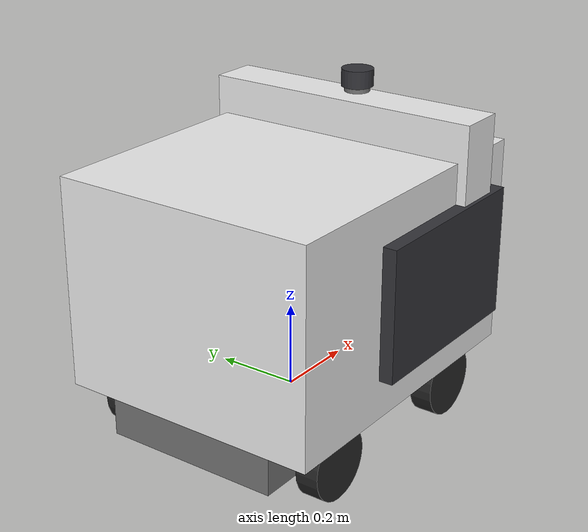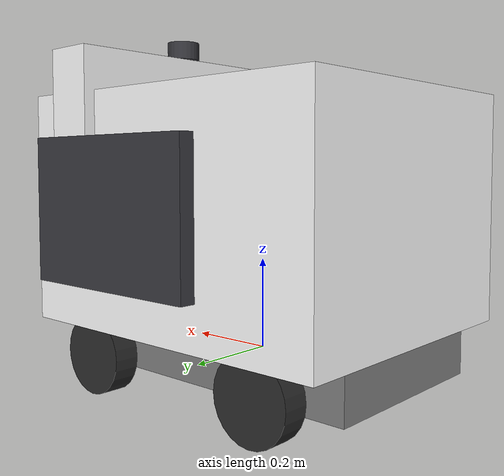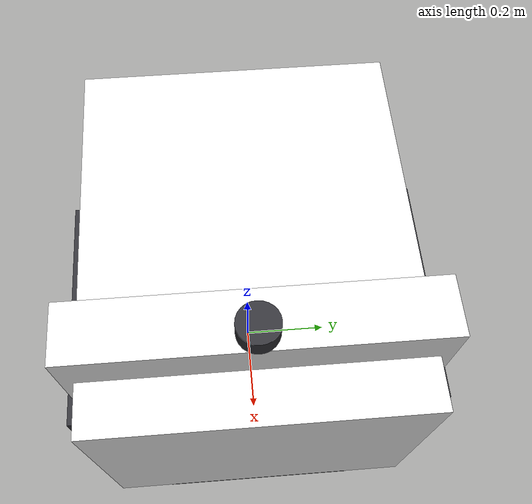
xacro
<?xml version="1.0"?>
<robot name="delivery_robot"
       xmlns:xacro="http://www.ros.org/wiki/xacro">

  <xacro:arg name="sim" default="false"/>

  <xacro:include
    filename="$(find robot_description)/urdf/robot_params.xacro"/>

  <xacro:include
    filename="$(find robot_description)/urdf/macros.xacro"/>

  <!-- 바닥 기준 높이를 base_link 기준 상대 높이로 변환 -->
  <xacro:property name="base_z" value="${wheel_radius}"/>

  <material name="body_white">
    <color rgba="0.92 0.92 0.92 1.0"/>
  </material>

  <material name="frame_grey">
    <color rgba="0.45 0.45 0.45 1.0"/>
  </material>

  <material name="sensor_dark">
    <color rgba="0.20 0.20 0.22 1.0"/>
  </material>

  <!-- ====================================================
       base_link: 바퀴 축 높이의 기준 프레임, 모델의 루트
       ==================================================== -->
  <link name="${base_frame}"/>

  <!-- ====================================================
       base_footprint: 바닥 높이의 고정 프레임
       평면 주행을 가정한다.
       ==================================================== -->
  <link name="base_footprint"/>

  <joint name="base_footprint_joint" type="fixed">
    <parent link="${base_frame}"/>
    <child link="base_footprint"/>
    <origin xyz="0 0 ${-base_z}" rpy="0 0 0"/>
  </joint>

  <!-- ====================================================
       body_link: 차체 형상, 충돌 형상, 차체 관성
       base_link와 같은 원점/방향에 고정한다.
       ==================================================== -->
  <link name="body_link">

    <!-- 하부 차체 -->
    <visual>
      <origin
        xyz="0 0 ${chassis_bottom_z + chassis_height/2 - base_z}"
        rpy="0 0 0"/>
      <geometry>
        <box
          size="${chassis_length} ${chassis_width} ${chassis_height}"/>
      </geometry>
      <material name="frame_grey"/>
    </visual>

    <collision>
      <origin
        xyz="0 0 ${chassis_bottom_z + chassis_height/2 - base_z}"
        rpy="0 0 0"/>
      <geometry>
        <box
          size="${chassis_length} ${chassis_width} ${chassis_height}"/>
      </geometry>
    </collision>

    <!-- 적재함 -->
    <visual>
      <origin
        xyz="${cargo_x_offset} 0 ${cargo_bottom_z + cargo_height/2 - base_z}"
        rpy="0 0 0"/>
      <geometry>
        <box size="${cargo_length} ${cargo_width} ${cargo_height}"/>
      </geometry>
      <material name="body_white"/>
    </visual>

    <!-- 충돌 형상은 측면 디스플레이까지 포함한 전체 폭(body_envelope_width)으로 둔다 -->
    <collision>
      <origin
        xyz="${cargo_x_offset} 0 ${cargo_bottom_z + cargo_height/2 - base_z}"
        rpy="0 0 0"/>
      <geometry>
        <box size="${cargo_length} ${body_envelope_width} ${cargo_height}"/>
      </geometry>
    </collision>

    <!-- 측면 디스플레이(베젤 포함) 좌/우: 시각화만 -->
    <xacro:macro name="display_visual" params="side">
      <visual>
        <origin
          xyz="${display_x} ${side * (body_envelope_width/2 - display_thickness/2)} ${display_z - base_z}"
          rpy="0 0 0"/>
        <geometry>
          <box
            size="${display_length} ${display_thickness} ${display_height}"/>
        </geometry>
        <material name="sensor_dark"/>
      </visual>
    </xacro:macro>

    <xacro:display_visual side="1"/>
    <xacro:display_visual side="-1"/>

    <!-- 리프트 다리 4개(적재함 아래): 시각화만, 충돌은 하부 섀시 상자가 담당 -->
    <xacro:macro name="lift_leg_visual" params="x y">
      <visual>
        <origin
          xyz="${x} ${y} ${lift_leg_center_z - base_z}"
          rpy="0 0 0"/>
        <geometry>
          <box
            size="${lift_leg_length} ${lift_leg_width} ${lift_leg_height}"/>
        </geometry>
        <material name="frame_grey"/>
      </visual>
    </xacro:macro>

    <xacro:lift_leg_visual x="${lift_leg_x}" y="${lift_leg_y}"/>
    <xacro:lift_leg_visual x="${lift_leg_x}" y="${-lift_leg_y}"/>
    <xacro:lift_leg_visual x="${-lift_leg_x}" y="${lift_leg_y}"/>
    <xacro:lift_leg_visual x="${-lift_leg_x}" y="${-lift_leg_y}"/>

    <!-- 손잡이 아치: 전방 끝(arch_x), 외함 위로 솟은 고리를 상자로 근사 -->
    <visual>
      <origin
        xyz="${arch_x} 0 ${arch_bar_z - base_z}"
        rpy="0 0 0"/>
      <geometry>
        <box
          size="${arch_bar_length} ${arch_bar_width} ${arch_bar_height}"/>
      </geometry>
      <material name="body_white"/>
    </visual>

    <collision>
      <origin
        xyz="${arch_x} 0 ${arch_bar_z - base_z}"
        rpy="0 0 0"/>
      <geometry>
        <box
          size="${arch_bar_length} ${arch_bar_width} ${arch_bar_height}"/>
      </geometry>
    </collision>

    <!-- LiDAR 마운트: 아치 위, LiDAR 외함 바닥까지 -->
    <visual>
      <origin
        xyz="${lidar_x} ${lidar_y} ${arch_bar_z + arch_bar_height/2 + lidar_mount_height/2 - base_z}"
        rpy="0 0 0"/>
      <geometry>
        <cylinder
          radius="${lidar_mount_radius}"
          length="${lidar_mount_height}"/>
      </geometry>
      <material name="frame_grey"/>
    </visual>

    <!-- 차체 관성: 기존 근사값을 이 링크에 배치 -->
    <xacro:box_inertial
      mass="${body_mass}"
      x="${body_inertia_length}"
      y="${body_inertia_width}"
      z="${body_inertia_height}">
      <origin
        xyz="0 0 ${body_com_z - base_z}"
        rpy="0 0 0"/>
    </xacro:box_inertial>

  </link>

  <joint name="body_joint" type="fixed">
    <parent link="${base_frame}"/>
    <child link="body_link"/>
    <origin xyz="0 0 0" rpy="0 0 0"/>
  </joint>

  <!-- ====================================================
       바퀴 4개
       ==================================================== -->
  <xacro:wheel
    name="wheel_front_left"
    x="${wheel_x}"
    y="${wheel_y}"
    radius="${wheel_radius}"
    width="${wheel_width}"
    mass="${wheel_mass}"/>

  <xacro:wheel
    name="wheel_front_right"
    x="${wheel_x}"
    y="${-wheel_y}"
    radius="${wheel_radius}"
    width="${wheel_width}"
    mass="${wheel_mass}"/>

  <xacro:wheel
    name="wheel_rear_left"
    x="${-wheel_x}"
    y="${wheel_y}"
    radius="${wheel_radius}"
    width="${wheel_width}"
    mass="${wheel_mass}"/>

  <xacro:wheel
    name="wheel_rear_right"
    x="${-wheel_x}"
    y="${-wheel_y}"
    radius="${wheel_radius}"
    width="${wheel_width}"
    mass="${wheel_mass}"/>

  <!-- ====================================================
       LiDAR: laser_link의 원점은 스캔 평면 중심
       ==================================================== -->
  <link name="${laser_frame}">
    <visual>
      <!-- 기존 센서 외함 시각화 오프셋 -->
      <origin
        xyz="0 0 ${-lidar_body_height/2 + 0.011}"
        rpy="0 0 0"/>
      <geometry>
        <cylinder
          radius="${lidar_body_radius}"
          length="${lidar_body_height}"/>
      </geometry>
      <material name="sensor_dark"/>
    </visual>

    <xacro:cylinder_inertial_z
      mass="${lidar_mass}"
      radius="${lidar_body_radius}"
      length="${lidar_body_height}">
      <origin xyz="0 0 0" rpy="0 0 0"/>
    </xacro:cylinder_inertial_z>
  </link>

  <joint name="laser_joint" type="fixed">
    <parent link="${base_frame}"/>
    <child link="${laser_frame}"/>
    <origin
      xyz="${lidar_x} ${lidar_y} ${lidar_z - base_z}"
      rpy="0 0 0"/>
  </joint>

  <!-- ====================================================
       IMU
       ==================================================== -->
  <link name="${imu_frame}">
    <visual>
      <geometry>
        <box size="0.02 0.02 0.005"/>
      </geometry>
      <material name="sensor_dark"/>
    </visual>

    <xacro:box_inertial
      mass="0.01"
      x="0.02"
      y="0.02"
      z="0.005">
      <origin xyz="0 0 0" rpy="0 0 0"/>
    </xacro:box_inertial>
  </link>

  <joint name="imu_joint" type="fixed">
    <parent link="${base_frame}"/>
    <child link="${imu_frame}"/>
    <origin
      xyz="${imu_x} ${imu_y} ${imu_z - base_z}"
      rpy="0 0 0"/>
  </joint>

  <link name="${camera_frame}">
    <visual>
      <origin
        xyz="${-camera_board_depth/2} 0 0"
        rpy="0 0 0"/>
      <geometry>
        <box
          size="${camera_board_depth} ${camera_board_width} ${camera_board_height}"/>
      </geometry>
      <material name="sensor_dark"/>
    </visual>

    <xacro:box_inertial
      mass="0.01"
      x="${camera_board_depth}"
      y="${camera_board_width}"
      z="${camera_board_height}">
      <origin xyz="0 0 0" rpy="0 0 0"/>
    </xacro:box_inertial>
  </link>

  <joint name="camera_joint" type="fixed">
    <parent link="${base_frame}"/>
    <child link="${camera_frame}"/>
    <origin
      xyz="${camera_x} ${camera_y} ${camera_z - base_z}"
      rpy="0 ${camera_pitch} 0"/>
  </joint>

  <!-- 영상 좌표계: x 우측, y 아래쪽, z 전방 -->
  <link name="${camera_optical_frame}"/>

  <joint name="camera_optical_joint" type="fixed">
    <parent link="${camera_frame}"/>
    <child link="${camera_optical_frame}"/>
    <origin xyz="0 0 0" rpy="${-pi/2} 0 ${-pi/2}"/>
  </joint>

  <!-- ====================================================
       시뮬레이션 센서와 구동 플러그인
       ==================================================== -->
  <xacro:if value="$(arg sim)">
    <xacro:include
      filename="$(find robot_description)/urdf/gazebo.xacro"/>
  </xacro:if>

</robot>

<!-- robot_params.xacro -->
<robot xmlns:xacro="http://www.ros.org/wiki/xacro">

  <!-- 하부 섀시(프레임 + 범퍼): 메시 y ±0.375, x ±0.2155, z 0.05~0.175 -->
  <xacro:property name="chassis_length" value="0.750"/>
  <xacro:property name="chassis_width" value="0.431"/>
  <xacro:property name="chassis_height" value="0.125"/>
  <xacro:property name="chassis_bottom_z" value="0.050"/>

  <xacro:property name="wheel_radius" value="0.0857"/>
  <xacro:property name="wheel_width" value="0.0545"/>
  <xacro:property name="wheel_x" value="0.230"/>
  <xacro:property name="wheel_y" value="0.2706"/>
  <xacro:property name="wheel_mass" value="2.5"/>

  <!--
    기존 시뮬레이션 구동 제한값 유지.
    150 rpm은 검증된 실물 정격값으로 취급하지 않는다.
    아래 계산값은 Nav2 운행 속도나 안전 관리자의 제한값을 대신하지 않는다.
    이 파일을 수정해도 실물 모터 드라이버의 제한값은 변경되지 않는다.
  -->
  <xacro:property name="wheel_max_rpm" value="150.0"/>
  <xacro:property name="max_linear_velocity"
                  value="${wheel_max_rpm / 60.0 * 2.0 * pi * wheel_radius}"/>
  <xacro:property name="max_angular_velocity"
                  value="${2.0 * max_linear_velocity / (2.0 * wheel_y)}"/>
  <xacro:property name="max_linear_acceleration" value="1.0"/>
  <xacro:property name="max_angular_acceleration" value="2.0"/>

  <xacro:property name="wheel_mu1" value="1.0"/>
  <xacro:property name="wheel_mu2" value="1.0"/>

  <!-- 적재함(외함): 메시 Body1, x ±0.3907, y ±0.321, z 0.150~0.650 -->
  <xacro:property name="cargo_length" value="0.781"/>
  <xacro:property name="cargo_width" value="0.642"/>
  <xacro:property name="cargo_height" value="0.500"/>
  <xacro:property name="cargo_x_offset" value="0.0"/>
  <xacro:property name="cargo_bottom_z" value="0.150"/>

  <!--
    측면 디스플레이 2개(패널 400×250 + 베젤 460×310): 외함 측면 바깥에 붙어
    로봇 전체 폭을 0.708 로 만든다. 충돌 형상은 외함을 이 폭으로 넓힌 상자 하나로 둔다.
    display_x: 전방 기준 중심 위치(메시 y -0.109 → ROS x +0.109).
  -->
  <xacro:property name="display_length" value="0.460"/>
  <xacro:property name="display_height" value="0.310"/>
  <xacro:property name="display_thickness" value="0.033"/>
  <xacro:property name="display_x" value="0.109"/>
  <xacro:property name="display_z" value="0.400"/>
  <xacro:property name="body_envelope_width" value="0.708"/>

  <!-- 리프트 다리 4개(적재함 아래, 바퀴 안쪽): 시각화만. 메시 (±0.139 측면, ±0.230 전후), z 0.04~0.19 -->
  <xacro:property name="lift_leg_length" value="0.160"/>
  <xacro:property name="lift_leg_width" value="0.100"/>
  <xacro:property name="lift_leg_height" value="0.150"/>
  <xacro:property name="lift_leg_x" value="0.230"/>
  <xacro:property name="lift_leg_y" value="0.139"/>
  <xacro:property name="lift_leg_center_z" value="0.115"/>

  <!--
    손잡이 아치(메시 Headset1): 전방 끝, 폭 0.689, 두께 0.114, z 0.525~0.740 의 상자로 근사.
    실제로는 외함 양옆을 지나는 고리 형상이며, 위에 LiDAR 마운트(0.010)가 얹혀 LiDAR
    외함 바닥이 0.750 이 된다.
  -->
  <xacro:property name="arch_x" value="0.233"/>
  <xacro:property name="arch_bar_length" value="0.114"/>
  <xacro:property name="arch_bar_width" value="0.689"/>
  <xacro:property name="arch_bar_height" value="0.215"/>
  <xacro:property name="arch_bar_z" value="0.6325"/>
  <xacro:property name="lidar_mount_radius" value="0.030"/>
  <xacro:property name="lidar_mount_height" value="0.010"/>

  <!--
    질량/관성: 근사값 유지(총 ~35 kg = body 25 + 바퀴 4×2.5), 실물 계측 필요.
    body_mass는 전체 URDF 질량이 아니다.
    URDF에서는 바퀴와 개별 센서의 질량도 추가된다.
  -->
  <xacro:property name="body_mass" value="25.0"/>
  <xacro:property name="body_com_z" value="0.30"/>
  <xacro:property name="body_inertia_length" value="0.781"/>
  <xacro:property name="body_inertia_width" value="0.708"/>
  <xacro:property name="body_inertia_height" value="0.650"/>

  <xacro:property name="lidar_x" value="0.261"/>
  <xacro:property name="lidar_y" value="0.0"/>
  <xacro:property name="lidar_z" value="0.783"/>
  <xacro:property name="lidar_body_radius" value="0.038"/>
  <xacro:property name="lidar_body_height" value="0.041"/>
  <xacro:property name="lidar_mass" value="0.19"/>
  <xacro:property name="lidar_samples" value="720"/>
  <xacro:property name="lidar_rate_hz" value="10.0"/>
  <xacro:property name="lidar_range_min" value="0.15"/>
  <xacro:property name="lidar_range_max" value="12.0"/>
  <xacro:property name="lidar_noise_std" value="0.01"/>

  <xacro:property name="camera_x" value="0.350"/>   <!-- TODO 실측 -->
  <xacro:property name="camera_y" value="0.0"/>     <!-- 중앙 -->
  <xacro:property name="camera_z" value="0.102"/>   <!-- TODO 실측 (바닥 기준) -->
  <xacro:property name="camera_pitch" value="0.0"/> <!-- TODO 실측 (아래로 숙이면 +) -->
  <xacro:property name="camera_board_depth" value="0.0115"/>
  <xacro:property name="camera_board_width" value="0.025"/>
  <xacro:property name="camera_board_height" value="0.024"/>
  <xacro:property name="camera_width" value="640"/>
  <xacro:property name="camera_height" value="480"/>

  <!--
    일반형 공칭 수평 화각 66도를 Gazebo 초기 근사값으로 사용한다.
    실제 640x480 출력은 센서 모드/크롭/초점 등에 따라 달라질 수 있다.
    보정된 실제 출력 화각이 아니며 CameraInfo 내부 파라미터도 아니다.
    실물 보정 후 시뮬레이션 카메라 모델을 별도로 맞춰야 한다.
  -->
  <xacro:property name="camera_hfov" value="${66.0 * pi / 180.0}"/>
  <xacro:property name="camera_rate_hz" value="15.0"/>

  <!-- IMU: 장착 위치 미확인, 기존 값(섀시 중앙, z 0.10) 유지 -->
  <xacro:property name="imu_x" value="0.0"/>
  <xacro:property name="imu_y" value="0.0"/>
  <xacro:property name="imu_z" value="0.100"/>
  <xacro:property name="imu_rate_hz" value="100.0"/>

  <!-- 기존 프레임 이름 유지 -->
  <xacro:property name="base_frame" value="base_link"/>
  <xacro:property name="laser_frame" value="laser_link"/>
  <xacro:property name="imu_frame" value="imu_link"/>
  <xacro:property name="camera_frame" value="camera_link"/>
  <xacro:property name="camera_optical_frame" value="camera_optical_frame"/>

  <!-- 기존 토픽 이름 유지 -->
  <xacro:property name="scan_topic" value="/scan"/>
  <xacro:property name="imu_topic" value="/imu/data"/>
  <xacro:property name="image_topic" value="/camera/image_raw"/>
  <xacro:property name="camera_info_topic" value="/camera/camera_info"/>
  <xacro:property name="joint_states_topic" value="/joint_states"/>

  <!-- Gazebo 구동 플러그인의 내부 토픽: 기존 bridge와 호환 유지 -->
  <xacro:property name="gz_cmd_vel_topic" value="/model/delivery_robot/cmd_vel"/>
  <xacro:property name="gz_odom_topic" value="/model/delivery_robot/odometry"/>
  <xacro:property name="gz_odom_cov_topic" value="/model/delivery_robot/odometry_with_covariance"/>
  <xacro:property name="gz_tf_topic" value="/model/delivery_robot/tf"/>
  <!-- 시뮬레이션 전용 지면 실측(진단용, robot_sim/config/bridge.yaml -> /sim/ground_truth/odom) -->
  <xacro:property name="gz_ground_truth_topic" value="/model/delivery_robot/ground_truth/odometry"/>
  <xacro:property name="gz_ground_truth_tf_topic" value="/model/delivery_robot/ground_truth/tf"/>

</robot>

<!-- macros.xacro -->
<robot xmlns:xacro="http://www.ros.org/wiki/xacro">

  <!-- Solid box: x = length, y = width, z = height, centred at the given origin -->
  <xacro:macro name="box_inertial" params="mass x y z *origin">
    <inertial>
      <xacro:insert_block name="origin"/>
      <mass value="${mass}"/>
      <inertia ixx="${mass / 12.0 * (y*y + z*z)}" ixy="0.0" ixz="0.0"
               iyy="${mass / 12.0 * (x*x + z*z)}" iyz="0.0"
               izz="${mass / 12.0 * (x*x + y*y)}"/>
    </inertial>
  </xacro:macro>

  <!-- Solid cylinder with its axis along +Z of the inertial frame -->
  <xacro:macro name="cylinder_inertial_z" params="mass radius length *origin">
    <inertial>
      <xacro:insert_block name="origin"/>
      <mass value="${mass}"/>
      <inertia ixx="${mass / 12.0 * (3.0*radius*radius + length*length)}" ixy="0.0" ixz="0.0"
               iyy="${mass / 12.0 * (3.0*radius*radius + length*length)}" iyz="0.0"
               izz="${mass / 2.0 * radius*radius}"/>
    </inertial>
  </xacro:macro>

  <!-- Solid cylinder with its axis along +Y of the inertial frame (a wheel on a y-axle) -->
  <xacro:macro name="cylinder_inertial_y" params="mass radius length *origin">
    <inertial>
      <xacro:insert_block name="origin"/>
      <mass value="${mass}"/>
      <inertia ixx="${mass / 12.0 * (3.0*radius*radius + length*length)}" ixy="0.0" ixz="0.0"
               iyy="${mass / 2.0 * radius*radius}" iyz="0.0"
               izz="${mass / 12.0 * (3.0*radius*radius + length*length)}"/>
    </inertial>
  </xacro:macro>

  <xacro:macro name="wheel" params="name x y radius width mass">
    <link name="${name}_link">
      <visual>
        <origin xyz="0 0 0" rpy="${pi/2} 0 0"/>
        <geometry><cylinder radius="${radius}" length="${width}"/></geometry>
        <material name="wheel_black"><color rgba="0.15 0.15 0.15 1.0"/></material>
      </visual>
      <collision>
        <origin xyz="0 0 0" rpy="${pi/2} 0 0"/>
        <geometry><cylinder radius="${radius}" length="${width}"/></geometry>
      </collision>
      <xacro:cylinder_inertial_y mass="${mass}" radius="${radius}" length="${width}">
        <origin xyz="0 0 0" rpy="0 0 0"/>
      </xacro:cylinder_inertial_y>
    </link>
    <joint name="${name}_joint" type="continuous">
      <parent link="base_link"/>
      <child link="${name}_link"/>
      <origin xyz="${x} ${y} 0" rpy="0 0 0"/>
      <axis xyz="0 1 0"/>
      <dynamics damping="0.1" friction="0.1"/>
    </joint>
  </xacro:macro>

</robot>
